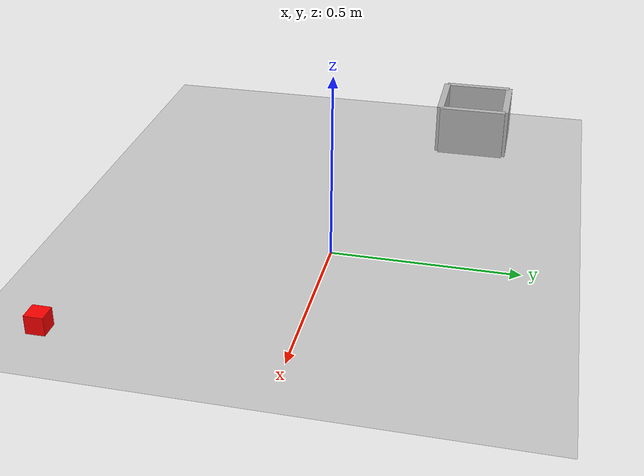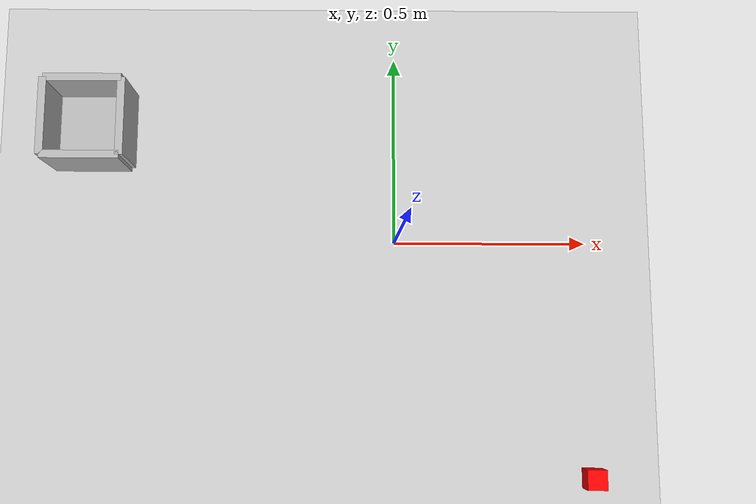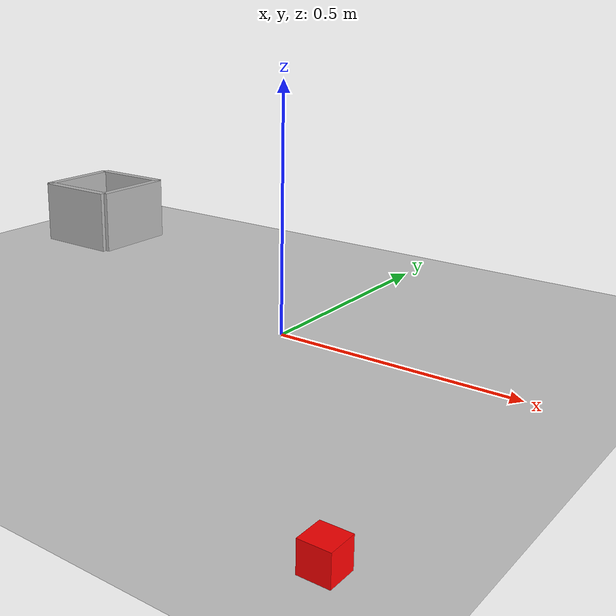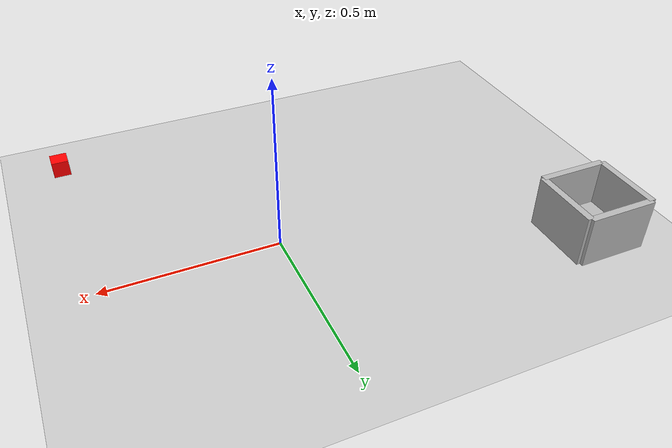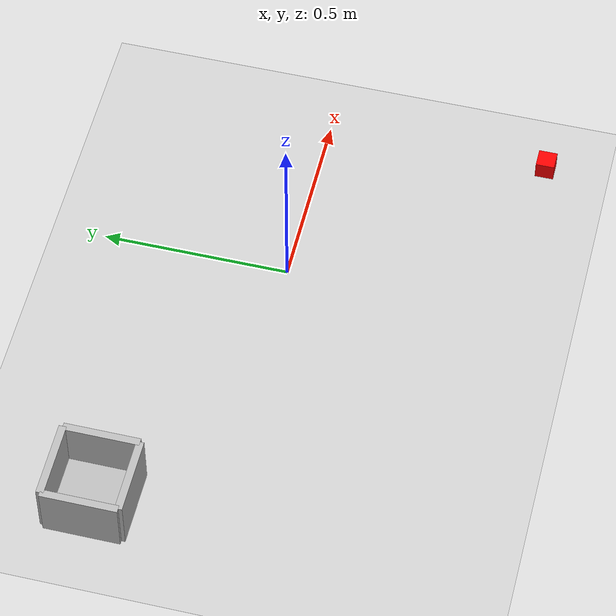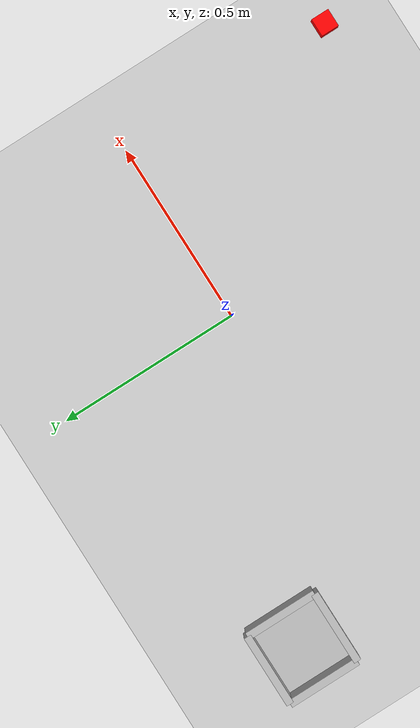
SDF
<?xml version="1.0" ?>
<sdf version="1.9">

  <world name="default">

    <plugin
      filename="gz-sim-physics-system"
      name="gz::sim::systems::Physics"/>

    <plugin
      filename="gz-sim-user-commands-system"
      name="gz::sim::systems::UserCommands"/>

    <plugin
      filename="gz-sim-scene-broadcaster-system"
      name="gz::sim::systems::SceneBroadcaster"/>

    <plugin
      filename="gz-sim-sensors-system"
      name="gz::sim::systems::Sensors"/>

    <gravity>0 0 -9.81</gravity>

    <light name="sun" type="directional">
      <cast_shadows>true</cast_shadows>
      <pose>0 0 10 0 0 0</pose>
      <diffuse>0.8 0.8 0.8 1</diffuse>
      <specular>0.2 0.2 0.2 1</specular>
      <direction>-0.5 0.1 -0.9</direction>
    </light>

    <model name="ground_plane">
      <static>true</static>
      <link name="link">
        <collision name="collision">
          <geometry>
            <plane>
              <normal>0 0 1</normal>
              <size>100 100</size>
            </plane>
          </geometry>
        </collision>

        <visual name="visual">
          <geometry>
            <plane>
              <normal>0 0 1</normal>
              <size>100 100</size>
            </plane>
          </geometry>

          <material>
            <ambient>0.8 0.8 0.8 1</ambient>
            <diffuse>0.8 0.8 0.8 1</diffuse>
          </material>
        </visual>
      </link>
    </model>
    <model name="red_cube">
      <static>false</static>

      <pose>0.5 -0.6 0.025 0 0 0</pose>

      <link name="link">

        <visual name="visual">
          <geometry>
            <box>
              <size>0.05 0.05 0.05</size>
            </box>
          </geometry>

          <material>
            <ambient>1 0 0 1</ambient>
            <diffuse>1 0 0 1</diffuse>
            <specular>0.1 0.1 0.1 1</specular>
          </material>
        </visual>

        <collision name="collision">
          <geometry>
            <box>
              <size>0.05 0.05 0.05</size>
            </box>
          </geometry>

          <surface>
            <friction>
              <ode>
                <mu>2.0</mu>
                <mu2>2.0</mu2>
              </ode>
            </friction>
          </surface>
        </collision>

        <inertial>
          <mass>0.05</mass>
          <inertia>
            <ixx>0.00003</ixx>
            <iyy>0.00003</iyy>
            <izz>0.00003</izz>
          </inertia>
        </inertial>

      </link>
    </model>

    <model name="basket">
      <static>true</static>

  <!-- Basket center position -->
      <pose>-0.8 0.3 0.0 0 0 0</pose>

    <!-- Bottom -->
      <link name="bottom">
        <collision name="collision">
          <geometry>
            <box>
              <size>0.2 0.2 0.02</size>
            </box>
          </geometry>
          <pose>0 0 0.01 0 0 0</pose>
        </collision>

        <visual name="visual">
          <geometry>
            <box>
              <size>0.2 0.2 0.02</size>
            </box>
          </geometry>
          <pose>0 0 0.01 0 0 0</pose>
        </visual>
      </link>

      <link name="left_wall">
        <pose>0 0.1 0.075 0 0 0</pose>
        <collision name="collision">
          <geometry>
            <box>
              <size>0.20 0.02 0.15</size>
            </box>
          </geometry>
        </collision>
        <visual name="visual">
          <geometry>
            <box>
              <size>0.20 0.02 0.15</size>
            </box>
          </geometry>
        </visual>
      </link>

      <link name="right_wall">
        <pose>0 -0.1 0.075 0 0 0</pose>
        <collision name="collision">
          <geometry>
            <box>
              <size>0.20 0.02 0.15</size>
            </box>
          </geometry>
        </collision>
        <visual name="visual">
          <geometry>
            <box>
              <size>0.20 0.02 0.15</size>
            </box>
          </geometry>
        </visual>
      </link>

      <link name="front_wall">
        <pose>0.1 0 0.075 0 0 0</pose>
        <collision name="collision">
          <geometry>
            <box>
              <size>0.02 0.20 0.15</size>
            </box>
          </geometry>
        </collision>
        <visual name="visual">
          <geometry>
            <box>
              <size>0.02 0.20 0.15</size>
            </box>
          </geometry>
        </visual>
      </link>

      <link name="back_wall">
        <pose>-0.1 0 0.075 0 0 0</pose>
          <collision name="collision">
            <geometry>
              <box>
                <size>0.02 0.20 0.15</size>
              </box>
            </geometry>
          </collision>
          <visual name="visual">
            <geometry>
              <box>
                <size>0.02 0.20 0.15</size>
              </box>
            </geometry>
          </visual>
      </link> -->

    </model>

  </world>

</sdf>
